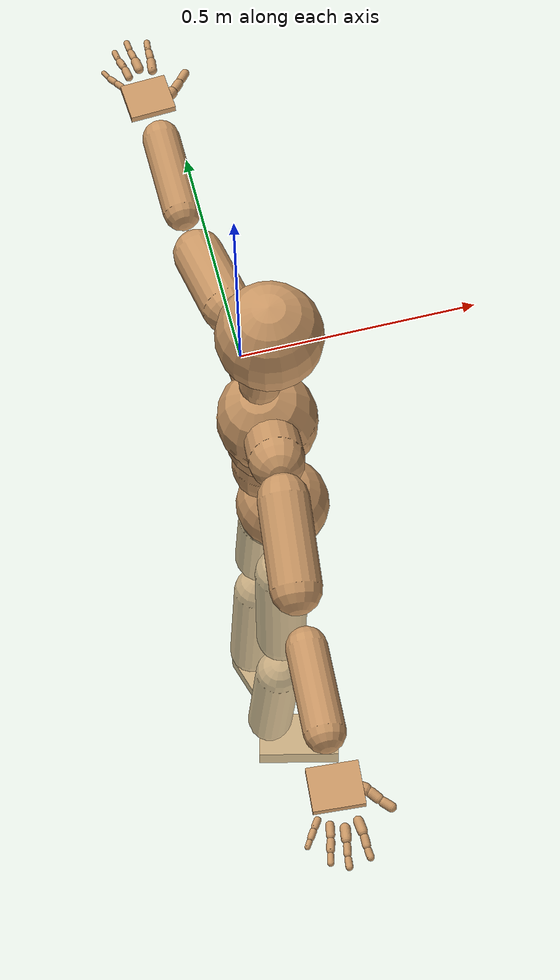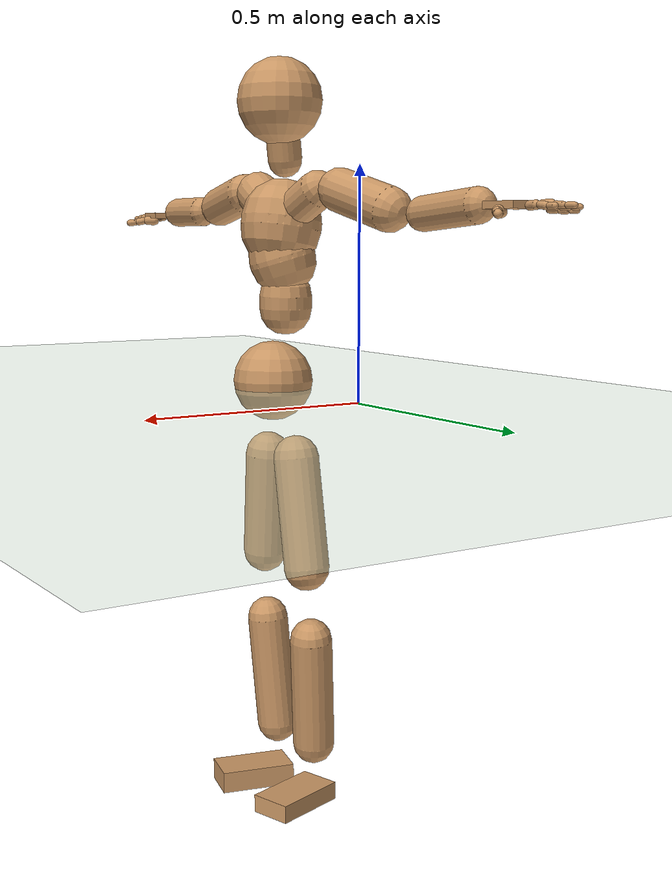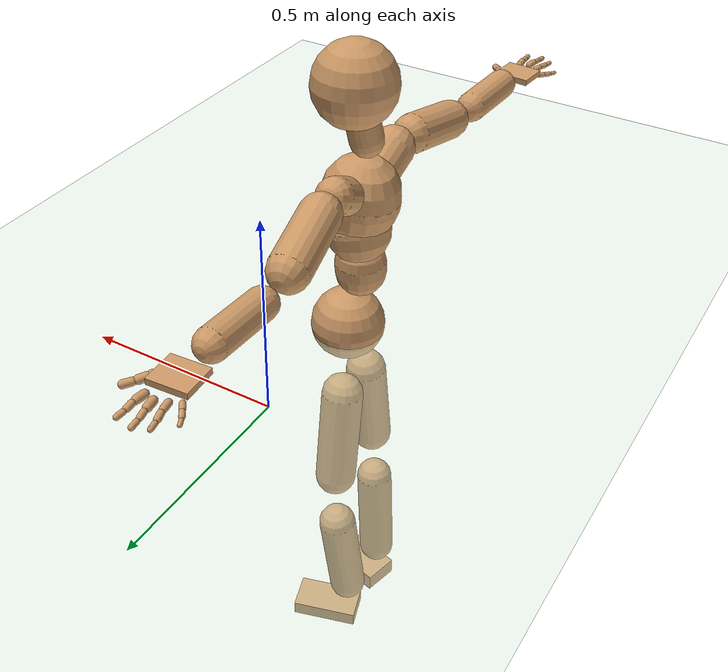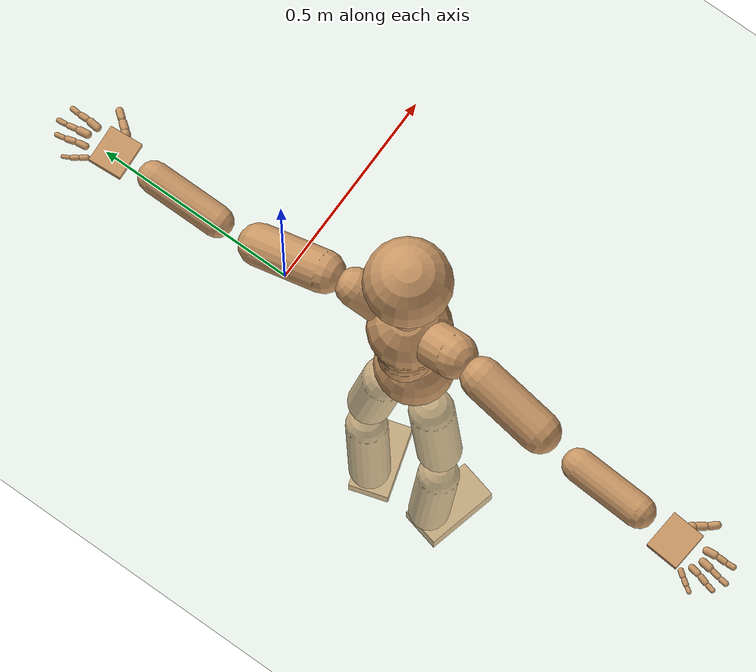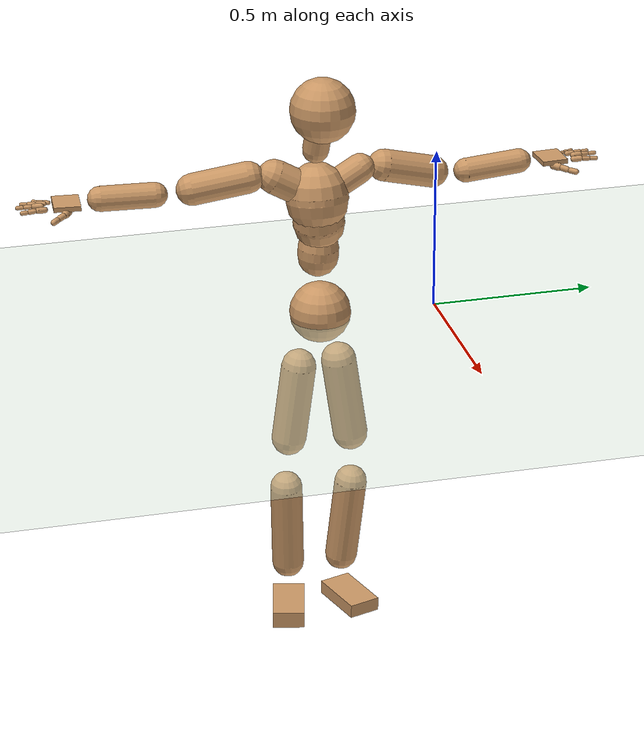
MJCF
<mujoco model="humanoid">
  <compiler coordinate="local" angle="radian"/>
  <default>
    <joint damping="0.0" armature="0.01" stiffness="0.0" limited="true"/>
    <geom conaffinity="1" condim="3" contype="7" margin="0.001" rgba="0.8 0.6 .4 1"/>
  </default>
  <asset>
    <texture type="skybox" builtin="gradient" rgb1=".4 .5 .6" rgb2="0 0 0" width="100" height="100"/>
    <texture builtin="flat" height="1278" mark="cross" markrgb="1 1 1" name="texgeom" random="0.01" rgb1="0.8 0.6 0.4" rgb2="0.8 0.6 0.4" type="cube" width="127"/>
    <texture builtin="checker" height="100" name="texplane" rgb1="0 0 0" rgb2="0.8 0.8 0.8" type="2d" width="100"/>
    <material name="MatPlane" reflectance="0.5" shininess="1" specular="1" texrepeat="60 60" texture="texplane"/>
    <material name="geom" texture="texgeom" texuniform="true"/>
  </asset>
  <worldbody>
    <light cutoff="100" diffuse="1 1 1" dir="-0 0 -1.3" directional="true" exponent="1" pos="0 0 1.3" specular=".1 .1 .1"/>
    <geom conaffinity="1" condim="3" name="floor" pos="0 0 0" rgba="0.8 0.9 0.8 1" size="100 100 .2" type="plane" material="MatPlane"/>
    <body name="Pelvis" pos="0.0008 -0.3584 0.0159">
      <freejoint name="Pelvis"/>
      <geom type="sphere" contype="1" conaffinity="1" density="500" size="0.0939" pos="0.0000 0.0000 0.0000" name="Pelvis"/>
      <body name="L_Hip" pos="-0.0229 0.0512 -0.0931">
        <joint name="L_Hip_x" type="hinge" pos="0 0 0" axis="1 0 0" stiffness="800" damping="80" armature="0.02" range="-180.0000 180.0000"/>
        <joint name="L_Hip_y" type="hinge" pos="0 0 0" axis="0 1 0" stiffness="800" damping="80" armature="0.02" range="-180.0000 180.0000"/>
        <joint name="L_Hip_z" type="hinge" pos="0 0 0" axis="0 0 1" stiffness="800" damping="80" armature="0.02" range="-180.0000 180.0000"/>
        <geom type="capsule" contype="1" conaffinity="1" density="500" fromto="-0.0017 0.0130 -0.0865 -0.0069 0.0519 -0.3461" size="0.0539" name="L_Hip"/>
        <body name="L_Knee" pos="-0.0086 0.0649 -0.4326">
          <joint name="L_Knee_x" type="hinge" pos="0 0 0" axis="1 0 0" stiffness="800" damping="80" armature="0.02" range="-180.0000 180.0000"/>
          <joint name="L_Knee_y" type="hinge" pos="0 0 0" axis="0 1 0" stiffness="800" damping="80" armature="0.02" range="-180.0000 180.0000"/>
          <joint name="L_Knee_z" type="hinge" pos="0 0 0" axis="0 0 1" stiffness="800" damping="80" armature="0.02" range="-180.0000 180.0000"/>
          <geom type="capsule" contype="1" conaffinity="1" density="500" fromto="-0.0077 -0.0082 -0.0902 -0.0307 -0.0327 -0.3609" size="0.0503" name="L_Knee"/>
          <body name="L_Ankle" pos="-0.0384 -0.0409 -0.4511">
            <joint name="L_Ankle_x" type="hinge" pos="0 0 0" axis="1 0 0" stiffness="800" damping="80" armature="0.02" range="-180.0000 180.0000"/>
            <joint name="L_Ankle_y" type="hinge" pos="0 0 0" axis="0 1 0" stiffness="800" damping="80" armature="0.02" range="-180.0000 180.0000"/>
            <joint name="L_Ankle_z" type="hinge" pos="0 0 0" axis="0 0 1" stiffness="800" damping="80" armature="0.02" range="-180.0000 180.0000"/>
            <geom type="box" contype="1" conaffinity="1" density="500" pos="0.0678 0.0208 -0.0328" size="0.0916 0.0499 0.0213" quat="0.9889 0.0000 0.0000 0.1483" name="L_Ankle"/>
            <body name="L_Toe" pos="0.1357 0.0416 -0.0655">
              <joint name="L_Toe_x" type="hinge" pos="0 0 0" axis="1 0 0" stiffness="500" damping="50" armature="0.02" range="-180.0000 180.0000"/>
              <joint name="L_Toe_y" type="hinge" pos="0 0 0" axis="0 1 0" stiffness="500" damping="50" armature="0.02" range="-180.0000 180.0000"/>
              <joint name="L_Toe_z" type="hinge" pos="0 0 0" axis="0 0 1" stiffness="500" damping="50" armature="0.02" range="-180.0000 180.0000"/>
              <geom type="box" contype="1" conaffinity="1" density="500" pos="0.0000 0.0000 0.0324" size="0.001 0.0024 0.0011" quat="0.9882 0.0000 0.0000 0.1529" name="L_Toe"/>
            </body>
          </body>
        </body>
      </body>
      <body name="R_Hip" pos="-0.0184 -0.0522 -0.1033">
        <joint name="R_Hip_x" type="hinge" pos="0 0 0" axis="1 0 0" stiffness="800" damping="80" armature="0.02" range="-180.0000 180.0000"/>
        <joint name="R_Hip_y" type="hinge" pos="0 0 0" axis="0 1 0" stiffness="800" damping="80" armature="0.02" range="-180.0000 180.0000"/>
        <joint name="R_Hip_z" type="hinge" pos="0 0 0" axis="0 0 1" stiffness="800" damping="80" armature="0.02" range="-180.0000 180.0000"/>
        <geom type="capsule" contype="1" conaffinity="1" density="500" fromto="-0.0029 -0.0100 -0.0829 -0.0117 -0.0401 -0.3316" size="0.0533" name="R_Hip"/>
        <body name="R_Knee" pos="-0.0147 -0.0501 -0.4144">
          <joint name="R_Knee_x" type="hinge" pos="0 0 0" axis="1 0 0" stiffness="800" damping="80" armature="0.02" range="-180.0000 180.0000"/>
          <joint name="R_Knee_y" type="hinge" pos="0 0 0" axis="0 1 0" stiffness="800" damping="80" armature="0.02" range="-180.0000 180.0000"/>
          <joint name="R_Knee_z" type="hinge" pos="0 0 0" axis="0 0 1" stiffness="800" damping="80" armature="0.02" range="-180.0000 180.0000"/>
          <geom type="capsule" contype="1" conaffinity="1" density="500" fromto="-0.0073 0.0031 -0.0933 -0.0291 0.0124 -0.3732" size="0.0497" name="R_Knee"/>
          <body name="R_Ankle" pos="-0.0364 0.0155 -0.4665">
            <joint name="R_Ankle_x" type="hinge" pos="0 0 0" axis="1 0 0" stiffness="800" damping="80" armature="0.02" range="-180.0000 180.0000"/>
            <joint name="R_Ankle_y" type="hinge" pos="0 0 0" axis="0 1 0" stiffness="800" damping="80" armature="0.02" range="-180.0000 180.0000"/>
            <joint name="R_Ankle_z" type="hinge" pos="0 0 0" axis="0 0 1" stiffness="800" damping="80" armature="0.02" range="-180.0000 180.0000"/>
            <geom type="box" contype="1" conaffinity="1" density="500" pos="0.0710 -0.0170 -0.0322" size="0.0916 0.0499 0.0259" quat="0.9931 0.0000 0.0000 -0.1173" name="R_Ankle"/>
            <body name="R_Toe" pos="0.1421 -0.034 -0.0643">
              <joint name="R_Toe_x" type="hinge" pos="0 0 0" axis="1 0 0" stiffness="500" damping="50" armature="0.02" range="-180.0000 180.0000"/>
              <joint name="R_Toe_y" type="hinge" pos="0 0 0" axis="0 1 0" stiffness="500" damping="50" armature="0.02" range="-180.0000 180.0000"/>
              <joint name="R_Toe_z" type="hinge" pos="0 0 0" axis="0 0 1" stiffness="500" damping="50" armature="0.02" range="-180.0000 180.0000"/>
              <geom type="box" contype="1" conaffinity="1" density="500" pos="0.0000 0.0000 0.0272" size="0.0009 0.0024 0.0011" quat="0.9940 0.0000 0.0000 -0.1092" name="R_Toe"/>
            </body>
          </body>
        </body>
      </body>
      <body name="Torso" pos="-0.0352 -0.001 0.1109">
        <joint name="Torso_x" type="hinge" pos="0 0 0" axis="1 0 0" stiffness="1000" damping="100" armature="0.02" range="-180.0000 180.0000"/>
        <joint name="Torso_y" type="hinge" pos="0 0 0" axis="0 1 0" stiffness="1000" damping="100" armature="0.02" range="-180.0000 180.0000"/>
        <joint name="Torso_z" type="hinge" pos="0 0 0" axis="0 0 1" stiffness="1000" damping="100" armature="0.02" range="-180.0000 180.0000"/>
        <geom type="capsule" contype="1" conaffinity="1" density="500" fromto="0.0017 0.0045 0.0881 0.0011 0.0030 0.0588" size="0.0625" name="Torso"/>
        <body name="Spine" pos="0.0028 0.0076 0.1469">
          <joint name="Spine_x" type="hinge" pos="0 0 0" axis="1 0 0" stiffness="1000" damping="100" armature="0.02" range="-180.0000 180.0000"/>
          <joint name="Spine_y" type="hinge" pos="0 0 0" axis="0 1 0" stiffness="1000" damping="100" armature="0.02" range="-180.0000 180.0000"/>
          <joint name="Spine_z" type="hinge" pos="0 0 0" axis="0 0 1" stiffness="1000" damping="100" armature="0.02" range="-180.0000 180.0000"/>
          <geom type="capsule" contype="1" conaffinity="1" density="500" fromto="0.0087 -0.0048 0.0330 0.0058 -0.0032 0.0220" size="0.0787" name="Spine"/>
          <body name="Chest" pos="0.0145 -0.0079 0.0551">
            <joint name="Chest_x" type="hinge" pos="0 0 0" axis="1 0 0" stiffness="1000" damping="100" armature="0.02" range="-180.0000 180.0000"/>
            <joint name="Chest_y" type="hinge" pos="0 0 0" axis="0 1 0" stiffness="1000" damping="100" armature="0.02" range="-180.0000 180.0000"/>
            <joint name="Chest_z" type="hinge" pos="0 0 0" axis="0 0 1" stiffness="1000" damping="100" armature="0.02" range="-180.0000 180.0000"/>
            <geom type="capsule" contype="1" conaffinity="1" density="500" fromto="-0.0092 -0.0014 0.0635 -0.0061 -0.0009 0.0423" size="0.0949" name="Chest"/>
            <body name="Neck" pos="-0.0251 -0.0066 0.1663">
              <joint name="Neck_x" type="hinge" pos="0 0 0" axis="1 0 0" stiffness="500" damping="50" armature="0.02" range="-180.0000 180.0000"/>
              <joint name="Neck_y" type="hinge" pos="0 0 0" axis="0 1 0" stiffness="500" damping="50" armature="0.02" range="-180.0000 180.0000"/>
              <joint name="Neck_z" type="hinge" pos="0 0 0" axis="0 0 1" stiffness="500" damping="50" armature="0.02" range="-180.0000 180.0000"/>
              <geom type="capsule" contype="1" conaffinity="1" density="500" fromto="0.0059 0.0039 0.0328 0.0235 0.0155 0.1313" size="0.0399" name="Neck"/>
              <body name="Head" pos="0.0293 0.0194 0.1642">
                <joint name="Head_x" type="hinge" pos="0 0 0" axis="1 0 0" stiffness="500" damping="50" armature="0.02" range="-180.0000 180.0000"/>
                <joint name="Head_y" type="hinge" pos="0 0 0" axis="0 1 0" stiffness="500" damping="50" armature="0.02" range="-180.0000 180.0000"/>
                <joint name="Head_z" type="hinge" pos="0 0 0" axis="0 0 1" stiffness="500" damping="50" armature="0.02" range="-180.0000 180.0000"/>
                <geom type="sphere" contype="1" conaffinity="1" density="500" size="0.0988" pos="0.0000 0.0000 0.0000" name="Head"/>
              </body>
            </body>
            <body name="L_Thorax" pos="-0.0084 0.038 0.0754">
              <joint name="L_Thorax_x" type="hinge" pos="0 0 0" axis="1 0 0" stiffness="500" damping="50" armature="0.02" range="-180.0000 180.0000"/>
              <joint name="L_Thorax_y" type="hinge" pos="0 0 0" axis="0 1 0" stiffness="500" damping="50" armature="0.02" range="-180.0000 180.0000"/>
              <joint name="L_Thorax_z" type="hinge" pos="0 0 0" axis="0 0 1" stiffness="500" damping="50" armature="0.02" range="-180.0000 180.0000"/>
              <geom type="capsule" contype="1" conaffinity="1" density="500" fromto="-0.0032 0.0241 0.0127 -0.0127 0.0964 0.0510" size="0.0445" name="L_Thorax"/>
              <body name="L_Shoulder" pos="-0.0159 0.1205 0.0637">
                <joint name="L_Shoulder_x" type="hinge" pos="0 0 0" axis="1 0 0" stiffness="500" damping="50" armature="0.02" range="-180.0000 180.0000"/>
                <joint name="L_Shoulder_y" type="hinge" pos="0 0 0" axis="0 1 0" stiffness="500" damping="50" armature="0.02" range="-180.0000 180.0000"/>
                <joint name="L_Shoulder_z" type="hinge" pos="0 0 0" axis="0 0 1" stiffness="500" damping="50" armature="0.02" range="-180.0000 180.0000"/>
                <geom type="capsule" contype="1" conaffinity="1" density="500" fromto="-0.0073 0.0522 -0.0149 -0.0292 0.2088 -0.0594" size="0.0491" name="L_Shoulder"/>
                <body name="L_Elbow" pos="-0.0365 0.261 -0.0743">
                  <joint name="L_Elbow_x" type="hinge" pos="0 0 0" axis="1 0 0" stiffness="500" damping="50" armature="0.02" range="-720.0000 720.0000"/>
                  <joint name="L_Elbow_y" type="hinge" pos="0 0 0" axis="0 1 0" stiffness="500" damping="50" armature="0.02" range="-720.0000 720.0000"/>
                  <joint name="L_Elbow_z" type="hinge" pos="0 0 0" axis="0 0 1" stiffness="500" damping="50" armature="0.02" range="-720.0000 720.0000"/>
                  <geom type="capsule" contype="1" conaffinity="1" density="500" fromto="-0.0010 0.0563 0.0044 -0.0039 0.2251 0.0176" size="0.037" name="L_Elbow"/>
                  <body name="L_Wrist" pos="-0.0049 0.2813 0.022">
                    <joint name="L_Wrist_x" type="hinge" pos="0 0 0" axis="1 0 0" stiffness="300" damping="30" armature="0.02" range="-180.0000 180.0000"/>
                    <joint name="L_Wrist_y" type="hinge" pos="0 0 0" axis="0 1 0" stiffness="300" damping="30" armature="0.02" range="-180.0000 180.0000"/>
                    <joint name="L_Wrist_z" type="hinge" pos="0 0 0" axis="0 0 1" stiffness="300" damping="30" armature="0.02" range="-180.0000 180.0000"/>
                    <geom type="box" contype="1" conaffinity="1" density="500" pos="-0.0031 0.0454 -0.0058" size="0.0403 0.0452 0.0072" quat="0.7305 0.0000 0.0000 -0.6829" name="L_Wrist"/>
                    <body name="L_Index1" pos="0.0196 0.1061 -0.0087">
                      <joint name="L_Index1_x" type="hinge" pos="0 0 0" axis="1 0 0" stiffness="100" damping="10" armature="0.02" range="-180.0000 180.0000"/>
                      <joint name="L_Index1_y" type="hinge" pos="0 0 0" axis="0 1 0" stiffness="100" damping="10" armature="0.02" range="-180.0000 180.0000"/>
                      <joint name="L_Index1_z" type="hinge" pos="0 0 0" axis="0 0 1" stiffness="100" damping="10" armature="0.02" range="-180.0000 180.0000"/>
                      <geom type="capsule" contype="1" conaffinity="1" density="500" fromto="0.0007 0.0066 0.0003 0.0028 0.0265 0.0010" size="0.0091" name="L_Index1"/>
                      <body name="L_Index2" pos="0.0035 0.0331 0.0013">
                        <joint name="L_Index2_x" type="hinge" pos="0 0 0" axis="1 0 0" stiffness="100" damping="10" armature="0.02" range="-180.0000 180.0000"/>
                        <joint name="L_Index2_y" type="hinge" pos="0 0 0" axis="0 1 0" stiffness="100" damping="10" armature="0.02" range="-180.0000 180.0000"/>
                        <joint name="L_Index2_z" type="hinge" pos="0 0 0" axis="0 0 1" stiffness="100" damping="10" armature="0.02" range="-180.0000 180.0000"/>
                        <geom type="capsule" contype="1" conaffinity="1" density="500" fromto="-0.0000 0.0047 -0.0005 -0.0001 0.0187 -0.0021" size="0.0075" name="L_Index2"/>
                        <body name="L_Index3" pos="-0.0002 0.0234 -0.0026">
                          <joint name="L_Index3_x" type="hinge" pos="0 0 0" axis="1 0 0" stiffness="100" damping="10" armature="0.02" range="-180.0000 180.0000"/>
                          <joint name="L_Index3_y" type="hinge" pos="0 0 0" axis="0 1 0" stiffness="100" damping="10" armature="0.02" range="-180.0000 180.0000"/>
                          <joint name="L_Index3_z" type="hinge" pos="0 0 0" axis="0 0 1" stiffness="100" damping="10" armature="0.02" range="-180.0000 180.0000"/>
                          <geom type="capsule" contype="1" conaffinity="1" density="500" fromto="0.0004 0.0051 -0.0001 0.0015 0.0203 -0.0005" size="0.0064" name="L_Index3"/>
                        </body>
                      </body>
                    </body>
                    <body name="L_Middle1" pos="-0.0042 0.1141 -0.0064">
                      <joint name="L_Middle1_x" type="hinge" pos="0 0 0" axis="1 0 0" stiffness="100" damping="10" armature="0.02" range="-180.0000 180.0000"/>
                      <joint name="L_Middle1_y" type="hinge" pos="0 0 0" axis="0 1 0" stiffness="100" damping="10" armature="0.02" range="-180.0000 180.0000"/>
                      <joint name="L_Middle1_z" type="hinge" pos="0 0 0" axis="0 0 1" stiffness="100" damping="10" armature="0.02" range="-180.0000 180.0000"/>
                      <geom type="capsule" contype="1" conaffinity="1" density="500" fromto="-0.0009 0.0063 0.0000 -0.0036 0.0253 0.0001" size="0.0093" name="L_Middle1"/>
                      <body name="L_Middle2" pos="-0.0044 0.0316 0.0001">
                        <joint name="L_Middle2_x" type="hinge" pos="0 0 0" axis="1 0 0" stiffness="100" damping="10" armature="0.02" range="-180.0000 180.0000"/>
                        <joint name="L_Middle2_y" type="hinge" pos="0 0 0" axis="0 1 0" stiffness="100" damping="10" armature="0.02" range="-180.0000 180.0000"/>
                        <joint name="L_Middle2_z" type="hinge" pos="0 0 0" axis="0 0 1" stiffness="100" damping="10" armature="0.02" range="-180.0000 180.0000"/>
                        <geom type="capsule" contype="1" conaffinity="1" density="500" fromto="-0.0009 0.0049 -0.0005 -0.0036 0.0194 -0.0020" size="0.0069" name="L_Middle2"/>
                        <body name="L_Middle3" pos="-0.0044 0.0243 -0.0025">
                          <joint name="L_Middle3_x" type="hinge" pos="0 0 0" axis="1 0 0" stiffness="100" damping="10" armature="0.02" range="-180.0000 180.0000"/>
                          <joint name="L_Middle3_y" type="hinge" pos="0 0 0" axis="0 1 0" stiffness="100" damping="10" armature="0.02" range="-180.0000 180.0000"/>
                          <joint name="L_Middle3_z" type="hinge" pos="0 0 0" axis="0 0 1" stiffness="100" damping="10" armature="0.02" range="-180.0000 180.0000"/>
                          <geom type="capsule" contype="1" conaffinity="1" density="500" fromto="-0.0005 0.0053 -0.0001 -0.0020 0.0210 -0.0004" size="0.0062" name="L_Middle3"/>
                        </body>
                      </body>
                    </body>
                    <body name="L_Pinky1" pos="-0.0442 0.0887 -0.0147">
                      <joint name="L_Pinky1_x" type="hinge" pos="0 0 0" axis="1 0 0" stiffness="100" damping="10" armature="0.02" range="-180.0000 180.0000"/>
                      <joint name="L_Pinky1_y" type="hinge" pos="0 0 0" axis="0 1 0" stiffness="100" damping="10" armature="0.02" range="-180.0000 180.0000"/>
                      <joint name="L_Pinky1_z" type="hinge" pos="0 0 0" axis="0 0 1" stiffness="100" damping="10" armature="0.02" range="-180.0000 180.0000"/>
                      <geom type="capsule" contype="1" conaffinity="1" density="500" fromto="-0.0024 0.0033 -0.0003 -0.0095 0.0133 -0.0012" size="0.0066" name="L_Pinky1"/>
                      <body name="L_Pinky2" pos="-0.0119 0.0167 -0.0015">
                        <joint name="L_Pinky2_x" type="hinge" pos="0 0 0" axis="1 0 0" stiffness="100" damping="10" armature="0.02" range="-180.0000 180.0000"/>
                        <joint name="L_Pinky2_y" type="hinge" pos="0 0 0" axis="0 1 0" stiffness="100" damping="10" armature="0.02" range="-180.0000 180.0000"/>
                        <joint name="L_Pinky2_z" type="hinge" pos="0 0 0" axis="0 0 1" stiffness="100" damping="10" armature="0.02" range="-180.0000 180.0000"/>
                        <geom type="capsule" contype="1" conaffinity="1" density="500" fromto="-0.0022 0.0033 -0.0003 -0.0089 0.0131 -0.0014" size="0.0063" name="L_Pinky2"/>
                        <body name="L_Pinky3" pos="-0.0111 0.0164 -0.0017">
                          <joint name="L_Pinky3_x" type="hinge" pos="0 0 0" axis="1 0 0" stiffness="100" damping="10" armature="0.02" range="-180.0000 180.0000"/>
                          <joint name="L_Pinky3_y" type="hinge" pos="0 0 0" axis="0 1 0" stiffness="100" damping="10" armature="0.02" range="-180.0000 180.0000"/>
                          <joint name="L_Pinky3_z" type="hinge" pos="0 0 0" axis="0 0 1" stiffness="100" damping="10" armature="0.02" range="-180.0000 180.0000"/>
                          <geom type="capsule" contype="1" conaffinity="1" density="500" fromto="-0.0018 0.0037 0.0001 -0.0073 0.0147 0.0002" size="0.0048" name="L_Pinky3"/>
                        </body>
                      </body>
                    </body>
                    <body name="L_Ring1" pos="-0.0277 0.1021 -0.0094">
                      <joint name="L_Ring1_x" type="hinge" pos="0 0 0" axis="1 0 0" stiffness="100" damping="10" armature="0.02" range="-180.0000 180.0000"/>
                      <joint name="L_Ring1_y" type="hinge" pos="0 0 0" axis="0 1 0" stiffness="100" damping="10" armature="0.02" range="-180.0000 180.0000"/>
                      <joint name="L_Ring1_z" type="hinge" pos="0 0 0" axis="0 0 1" stiffness="100" damping="10" armature="0.02" range="-180.0000 180.0000"/>
                      <geom type="capsule" contype="1" conaffinity="1" density="500" fromto="-0.0010 0.0058 0.0001 -0.0041 0.0234 0.0003" size="0.0078" name="L_Ring1"/>
                      <body name="L_Ring2" pos="-0.0051 0.0292 0.0004">
                        <joint name="L_Ring2_x" type="hinge" pos="0 0 0" axis="1 0 0" stiffness="100" damping="10" armature="0.02" range="-180.0000 180.0000"/>
                        <joint name="L_Ring2_y" type="hinge" pos="0 0 0" axis="0 1 0" stiffness="100" damping="10" armature="0.02" range="-180.0000 180.0000"/>
                        <joint name="L_Ring2_z" type="hinge" pos="0 0 0" axis="0 0 1" stiffness="100" damping="10" armature="0.02" range="-180.0000 180.0000"/>
                        <geom type="capsule" contype="1" conaffinity="1" density="500" fromto="-0.0014 0.0048 -0.0005 -0.0055 0.0190 -0.0018" size="0.0074" name="L_Ring2"/>
                        <body name="L_Ring3" pos="-0.0068 0.0238 -0.0023">
                          <joint name="L_Ring3_x" type="hinge" pos="0 0 0" axis="1 0 0" stiffness="100" damping="10" armature="0.02" range="-180.0000 180.0000"/>
                          <joint name="L_Ring3_y" type="hinge" pos="0 0 0" axis="0 1 0" stiffness="100" damping="10" armature="0.02" range="-180.0000 180.0000"/>
                          <joint name="L_Ring3_z" type="hinge" pos="0 0 0" axis="0 0 1" stiffness="100" damping="10" armature="0.02" range="-180.0000 180.0000"/>
                          <geom type="capsule" contype="1" conaffinity="1" density="500" fromto="-0.0010 0.0052 -0.0001 -0.0039 0.0206 -0.0002" size="0.0058" name="L_Ring3"/>
                        </body>
                      </body>
                    </body>
                    <body name="L_Thumb1" pos="0.0258 0.0428 -0.0188">
                      <joint name="L_Thumb1_x" type="hinge" pos="0 0 0" axis="1 0 0" stiffness="100" damping="10" armature="0.02" range="-180.0000 180.0000"/>
                      <joint name="L_Thumb1_y" type="hinge" pos="0 0 0" axis="0 1 0" stiffness="100" damping="10" armature="0.02" range="-180.0000 180.0000"/>
                      <joint name="L_Thumb1_z" type="hinge" pos="0 0 0" axis="0 0 1" stiffness="100" damping="10" armature="0.02" range="-180.0000 180.0000"/>
                      <geom type="capsule" contype="1" conaffinity="1" density="500" fromto="0.0052 0.0035 0.0002 0.0210 0.0139 0.0009" size="0.012" name="L_Thumb1"/>
                      <body name="L_Thumb2" pos="0.0262 0.0174 0.0011">
                        <joint name="L_Thumb2_x" type="hinge" pos="0 0 0" axis="1 0 0" stiffness="100" damping="10" armature="0.02" range="-180.0000 180.0000"/>
                        <joint name="L_Thumb2_y" type="hinge" pos="0 0 0" axis="0 1 0" stiffness="100" damping="10" armature="0.02" range="-180.0000 180.0000"/>
                        <joint name="L_Thumb2_z" type="hinge" pos="0 0 0" axis="0 0 1" stiffness="100" damping="10" armature="0.02" range="-180.0000 180.0000"/>
                        <geom type="capsule" contype="1" conaffinity="1" density="500" fromto="0.0033 0.0043 -0.0009 0.0134 0.0171 -0.0035" size="0.0095" name="L_Thumb2"/>
                        <body name="L_Thumb3" pos="0.0167 0.0213 -0.0044">
                          <joint name="L_Thumb3_x" type="hinge" pos="0 0 0" axis="1 0 0" stiffness="100" damping="10" armature="0.02" range="-180.0000 180.0000"/>
                          <joint name="L_Thumb3_y" type="hinge" pos="0 0 0" axis="0 1 0" stiffness="100" damping="10" armature="0.02" range="-180.0000 180.0000"/>
                          <joint name="L_Thumb3_z" type="hinge" pos="0 0 0" axis="0 0 1" stiffness="100" damping="10" armature="0.02" range="-180.0000 180.0000"/>
                          <geom type="capsule" contype="1" conaffinity="1" density="500" fromto="0.0037 0.0047 -0.0005 0.0150 0.0187 -0.0019" size="0.0087" name="L_Thumb3"/>
                        </body>
                      </body>
                    </body>
                  </body>
                </body>
              </body>
            </body>
            <body name="R_Thorax" pos="-0.0124 -0.0384 0.0759">
              <joint name="R_Thorax_x" type="hinge" pos="0 0 0" axis="1 0 0" stiffness="500" damping="50" armature="0.02" range="-180.0000 180.0000"/>
              <joint name="R_Thorax_y" type="hinge" pos="0 0 0" axis="0 1 0" stiffness="500" damping="50" armature="0.02" range="-180.0000 180.0000"/>
              <joint name="R_Thorax_z" type="hinge" pos="0 0 0" axis="0 0 1" stiffness="500" damping="50" armature="0.02" range="-180.0000 180.0000"/>
              <geom type="capsule" contype="1" conaffinity="1" density="500" fromto="-0.0018 -0.0225 0.0124 -0.0073 -0.0899 0.0497" size="0.0524" name="R_Thorax"/>
              <body name="R_Shoulder" pos="-0.0091 -0.1124 0.0621">
                <joint name="R_Shoulder_x" type="hinge" pos="0 0 0" axis="1 0 0" stiffness="500" damping="50" armature="0.02" range="-180.0000 180.0000"/>
                <joint name="R_Shoulder_y" type="hinge" pos="0 0 0" axis="0 1 0" stiffness="500" damping="50" armature="0.02" range="-180.0000 180.0000"/>
                <joint name="R_Shoulder_z" type="hinge" pos="0 0 0" axis="0 0 1" stiffness="500" damping="50" armature="0.02" range="-180.0000 180.0000"/>
                <geom type="capsule" contype="1" conaffinity="1" density="500" fromto="-0.0058 -0.0555 -0.0097 -0.0234 -0.2220 -0.0389" size="0.0481" name="R_Shoulder"/>
                <body name="R_Elbow" pos="-0.0292 -0.2775 -0.0486">
                  <joint name="R_Elbow_x" type="hinge" pos="0 0 0" axis="1 0 0" stiffness="500" damping="50" armature="0.02" range="-720.0000 720.0000"/>
                  <joint name="R_Elbow_y" type="hinge" pos="0 0 0" axis="0 1 0" stiffness="500" damping="50" armature="0.02" range="-720.0000 720.0000"/>
                  <joint name="R_Elbow_z" type="hinge" pos="0 0 0" axis="0 0 1" stiffness="500" damping="50" armature="0.02" range="-720.0000 720.0000"/>
                  <geom type="capsule" contype="1" conaffinity="1" density="500" fromto="-0.0028 -0.0544 0.0002 -0.0112 -0.2175 0.0008" size="0.038" name="R_Elbow"/>
                  <body name="R_Wrist" pos="-0.014 -0.2719 0.001">
                    <joint name="R_Wrist_x" type="hinge" pos="0 0 0" axis="1 0 0" stiffness="300" damping="30" armature="0.02" range="-180.0000 180.0000"/>
                    <joint name="R_Wrist_y" type="hinge" pos="0 0 0" axis="0 1 0" stiffness="300" damping="30" armature="0.02" range="-180.0000 180.0000"/>
                    <joint name="R_Wrist_z" type="hinge" pos="0 0 0" axis="0 0 1" stiffness="300" damping="30" armature="0.02" range="-180.0000 180.0000"/>
                    <geom type="box" contype="1" conaffinity="1" density="500" pos="-0.0035 -0.0452 -0.0075" size="0.0403 0.0465 0.0074" quat="0.7340 0.0000 0.0000 0.6792" name="R_Wrist"/>
                    <body name="R_Index1" pos="0.0187 -0.1057 -0.012">
                      <joint name="R_Index1_x" type="hinge" pos="0 0 0" axis="1 0 0" stiffness="100" damping="10" armature="0.02" range="-180.0000 180.0000"/>
                      <joint name="R_Index1_y" type="hinge" pos="0 0 0" axis="0 1 0" stiffness="100" damping="10" armature="0.02" range="-180.0000 180.0000"/>
                      <joint name="R_Index1_z" type="hinge" pos="0 0 0" axis="0 0 1" stiffness="100" damping="10" armature="0.02" range="-180.0000 180.0000"/>
                      <geom type="capsule" contype="1" conaffinity="1" density="500" fromto="0.0007 -0.0066 0.0003 0.0028 -0.0265 0.0010" size="0.0091" name="R_Index1"/>
                      <body name="R_Index2" pos="0.0035 -0.0331 0.0013">
                        <joint name="R_Index2_x" type="hinge" pos="0 0 0" axis="1 0 0" stiffness="100" damping="10" armature="0.02" range="-180.0000 180.0000"/>
                        <joint name="R_Index2_y" type="hinge" pos="0 0 0" axis="0 1 0" stiffness="100" damping="10" armature="0.02" range="-180.0000 180.0000"/>
                        <joint name="R_Index2_z" type="hinge" pos="0 0 0" axis="0 0 1" stiffness="100" damping="10" armature="0.02" range="-180.0000 180.0000"/>
                        <geom type="capsule" contype="1" conaffinity="1" density="500" fromto="-0.0000 -0.0047 -0.0005 -0.0001 -0.0187 -0.0021" size="0.0075" name="R_Index2"/>
                        <body name="R_Index3" pos="-0.0002 -0.0234 -0.0026">
                          <joint name="R_Index3_x" type="hinge" pos="0 0 0" axis="1 0 0" stiffness="100" damping="10" armature="0.02" range="-180.0000 180.0000"/>
                          <joint name="R_Index3_y" type="hinge" pos="0 0 0" axis="0 1 0" stiffness="100" damping="10" armature="0.02" range="-180.0000 180.0000"/>
                          <joint name="R_Index3_z" type="hinge" pos="0 0 0" axis="0 0 1" stiffness="100" damping="10" armature="0.02" range="-180.0000 180.0000"/>
                          <geom type="capsule" contype="1" conaffinity="1" density="500" fromto="0.0004 -0.0043 -0.0001 0.0015 -0.0171 -0.0005" size="0.0067" name="R_Index3"/>
                        </body>
                      </body>
                    </body>
                    <body name="R_Middle1" pos="-0.0051 -0.1137 -0.0098">
                      <joint name="R_Middle1_x" type="hinge" pos="0 0 0" axis="1 0 0" stiffness="100" damping="10" armature="0.02" range="-180.0000 180.0000"/>
                      <joint name="R_Middle1_y" type="hinge" pos="0 0 0" axis="0 1 0" stiffness="100" damping="10" armature="0.02" range="-180.0000 180.0000"/>
                      <joint name="R_Middle1_z" type="hinge" pos="0 0 0" axis="0 0 1" stiffness="100" damping="10" armature="0.02" range="-180.0000 180.0000"/>
                      <geom type="capsule" contype="1" conaffinity="1" density="500" fromto="-0.0009 -0.0063 0.0000 -0.0036 -0.0253 0.0001" size="0.0093" name="R_Middle1"/>
                      <body name="R_Middle2" pos="-0.0044 -0.0316 0.0001">
                        <joint name="R_Middle2_x" type="hinge" pos="0 0 0" axis="1 0 0" stiffness="100" damping="10" armature="0.02" range="-180.0000 180.0000"/>
                        <joint name="R_Middle2_y" type="hinge" pos="0 0 0" axis="0 1 0" stiffness="100" damping="10" armature="0.02" range="-180.0000 180.0000"/>
                        <joint name="R_Middle2_z" type="hinge" pos="0 0 0" axis="0 0 1" stiffness="100" damping="10" armature="0.02" range="-180.0000 180.0000"/>
                        <geom type="capsule" contype="1" conaffinity="1" density="500" fromto="-0.0009 -0.0049 -0.0005 -0.0036 -0.0194 -0.0020" size="0.0069" name="R_Middle2"/>
                        <body name="R_Middle3" pos="-0.0044 -0.0243 -0.0025">
                          <joint name="R_Middle3_x" type="hinge" pos="0 0 0" axis="1 0 0" stiffness="100" damping="10" armature="0.02" range="-180.0000 180.0000"/>
                          <joint name="R_Middle3_y" type="hinge" pos="0 0 0" axis="0 1 0" stiffness="100" damping="10" armature="0.02" range="-180.0000 180.0000"/>
                          <joint name="R_Middle3_z" type="hinge" pos="0 0 0" axis="0 0 1" stiffness="100" damping="10" armature="0.02" range="-180.0000 180.0000"/>
                          <geom type="capsule" contype="1" conaffinity="1" density="500" fromto="-0.0005 -0.0045 -0.0001 -0.0020 -0.0178 -0.0004" size="0.0065" name="R_Middle3"/>
                        </body>
                      </body>
                    </body>
                    <body name="R_Pinky1" pos="-0.0451 -0.0884 -0.018">
                      <joint name="R_Pinky1_x" type="hinge" pos="0 0 0" axis="1 0 0" stiffness="100" damping="10" armature="0.02" range="-180.0000 180.0000"/>
                      <joint name="R_Pinky1_y" type="hinge" pos="0 0 0" axis="0 1 0" stiffness="100" damping="10" armature="0.02" range="-180.0000 180.0000"/>
                      <joint name="R_Pinky1_z" type="hinge" pos="0 0 0" axis="0 0 1" stiffness="100" damping="10" armature="0.02" range="-180.0000 180.0000"/>
                      <geom type="capsule" contype="1" conaffinity="1" density="500" fromto="-0.0024 -0.0033 -0.0003 -0.0095 -0.0133 -0.0012" size="0.0066" name="R_Pinky1"/>
                      <body name="R_Pinky2" pos="-0.0118 -0.0167 -0.0015">
                        <joint name="R_Pinky2_x" type="hinge" pos="0 0 0" axis="1 0 0" stiffness="100" damping="10" armature="0.02" range="-180.0000 180.0000"/>
                        <joint name="R_Pinky2_y" type="hinge" pos="0 0 0" axis="0 1 0" stiffness="100" damping="10" armature="0.02" range="-180.0000 180.0000"/>
                        <joint name="R_Pinky2_z" type="hinge" pos="0 0 0" axis="0 0 1" stiffness="100" damping="10" armature="0.02" range="-180.0000 180.0000"/>
                        <geom type="capsule" contype="1" conaffinity="1" density="500" fromto="-0.0022 -0.0033 -0.0003 -0.0089 -0.0131 -0.0014" size="0.0063" name="R_Pinky2"/>
                        <body name="R_Pinky3" pos="-0.0111 -0.0164 -0.0017">
                          <joint name="R_Pinky3_x" type="hinge" pos="0 0 0" axis="1 0 0" stiffness="100" damping="10" armature="0.02" range="-180.0000 180.0000"/>
                          <joint name="R_Pinky3_y" type="hinge" pos="0 0 0" axis="0 1 0" stiffness="100" damping="10" armature="0.02" range="-180.0000 180.0000"/>
                          <joint name="R_Pinky3_z" type="hinge" pos="0 0 0" axis="0 0 1" stiffness="100" damping="10" armature="0.02" range="-180.0000 180.0000"/>
                          <geom type="capsule" contype="1" conaffinity="1" density="500" fromto="-0.0018 -0.0029 0.0001 -0.0073 -0.0115 0.0002" size="0.0051" name="R_Pinky3"/>
                        </body>
                      </body>
                    </body>
                    <body name="R_Ring1" pos="-0.0286 -0.1017 -0.0128">
                      <joint name="R_Ring1_x" type="hinge" pos="0 0 0" axis="1 0 0" stiffness="100" damping="10" armature="0.02" range="-180.0000 180.0000"/>
                      <joint name="R_Ring1_y" type="hinge" pos="0 0 0" axis="0 1 0" stiffness="100" damping="10" armature="0.02" range="-180.0000 180.0000"/>
                      <joint name="R_Ring1_z" type="hinge" pos="0 0 0" axis="0 0 1" stiffness="100" damping="10" armature="0.02" range="-180.0000 180.0000"/>
                      <geom type="capsule" contype="1" conaffinity="1" density="500" fromto="-0.0010 -0.0058 0.0001 -0.0041 -0.0234 0.0003" size="0.0078" name="R_Ring1"/>
                      <body name="R_Ring2" pos="-0.0051 -0.0292 0.0004">
                        <joint name="R_Ring2_x" type="hinge" pos="0 0 0" axis="1 0 0" stiffness="100" damping="10" armature="0.02" range="-180.0000 180.0000"/>
                        <joint name="R_Ring2_y" type="hinge" pos="0 0 0" axis="0 1 0" stiffness="100" damping="10" armature="0.02" range="-180.0000 180.0000"/>
                        <joint name="R_Ring2_z" type="hinge" pos="0 0 0" axis="0 0 1" stiffness="100" damping="10" armature="0.02" range="-180.0000 180.0000"/>
                        <geom type="capsule" contype="1" conaffinity="1" density="500" fromto="-0.0014 -0.0048 -0.0005 -0.0055 -0.0190 -0.0018" size="0.0074" name="R_Ring2"/>
                        <body name="R_Ring3" pos="-0.0068 -0.0238 -0.0023">
                          <joint name="R_Ring3_x" type="hinge" pos="0 0 0" axis="1 0 0" stiffness="100" damping="10" armature="0.02" range="-180.0000 180.0000"/>
                          <joint name="R_Ring3_y" type="hinge" pos="0 0 0" axis="0 1 0" stiffness="100" damping="10" armature="0.02" range="-180.0000 180.0000"/>
                          <joint name="R_Ring3_z" type="hinge" pos="0 0 0" axis="0 0 1" stiffness="100" damping="10" armature="0.02" range="-180.0000 180.0000"/>
                          <geom type="capsule" contype="1" conaffinity="1" density="500" fromto="-0.0010 -0.0044 -0.0001 -0.0039 -0.0174 -0.0002" size="0.0061" name="R_Ring3"/>
                        </body>
                      </body>
                    </body>
                    <body name="R_Thumb1" pos="0.025 -0.0424 -0.0222">
                      <joint name="R_Thumb1_x" type="hinge" pos="0 0 0" axis="1 0 0" stiffness="100" damping="10" armature="0.02" range="-180.0000 180.0000"/>
                      <joint name="R_Thumb1_y" type="hinge" pos="0 0 0" axis="0 1 0" stiffness="100" damping="10" armature="0.02" range="-180.0000 180.0000"/>
                      <joint name="R_Thumb1_z" type="hinge" pos="0 0 0" axis="0 0 1" stiffness="100" damping="10" armature="0.02" range="-180.0000 180.0000"/>
                      <geom type="capsule" contype="1" conaffinity="1" density="500" fromto="0.0052 -0.0035 0.0002 0.0210 -0.0139 0.0009" size="0.012" name="R_Thumb1"/>
                      <body name="R_Thumb2" pos="0.0262 -0.0174 0.0011">
                        <joint name="R_Thumb2_x" type="hinge" pos="0 0 0" axis="1 0 0" stiffness="100" damping="10" armature="0.02" range="-180.0000 180.0000"/>
                        <joint name="R_Thumb2_y" type="hinge" pos="0 0 0" axis="0 1 0" stiffness="100" damping="10" armature="0.02" range="-180.0000 180.0000"/>
                        <joint name="R_Thumb2_z" type="hinge" pos="0 0 0" axis="0 0 1" stiffness="100" damping="10" armature="0.02" range="-180.0000 180.0000"/>
                        <geom type="capsule" contype="1" conaffinity="1" density="500" fromto="0.0033 -0.0043 -0.0009 0.0134 -0.0171 -0.0035" size="0.0095" name="R_Thumb2"/>
                        <body name="R_Thumb3" pos="0.0167 -0.0213 -0.0044">
                          <joint name="R_Thumb3_x" type="hinge" pos="0 0 0" axis="1 0 0" stiffness="100" damping="10" armature="0.02" range="-180.0000 180.0000"/>
                          <joint name="R_Thumb3_y" type="hinge" pos="0 0 0" axis="0 1 0" stiffness="100" damping="10" armature="0.02" range="-180.0000 180.0000"/>
                          <joint name="R_Thumb3_z" type="hinge" pos="0 0 0" axis="0 0 1" stiffness="100" damping="10" armature="0.02" range="-180.0000 180.0000"/>
                          <geom type="capsule" contype="1" conaffinity="1" density="500" fromto="0.0037 -0.0039 -0.0005 0.0150 -0.0155 -0.0019" size="0.009" name="R_Thumb3"/>
                        </body>
                      </body>
                    </body>
                  </body>
                </body>
              </body>
            </body>
          </body>
        </body>
      </body>
    </body>
  </worldbody>
  <actuator>
    <motor name="L_Hip_x" joint="L_Hip_x" gear="500"/>
    <motor name="L_Hip_y" joint="L_Hip_y" gear="500"/>
    <motor name="L_Hip_z" joint="L_Hip_z" gear="500"/>
    <motor name="L_Knee_x" joint="L_Knee_x" gear="500"/>
    <motor name="L_Knee_y" joint="L_Knee_y" gear="500"/>
    <motor name="L_Knee_z" joint="L_Knee_z" gear="500"/>
    <motor name="L_Ankle_x" joint="L_Ankle_x" gear="500"/>
    <motor name="L_Ankle_y" joint="L_Ankle_y" gear="500"/>
    <motor name="L_Ankle_z" joint="L_Ankle_z" gear="500"/>
    <motor name="L_Toe_x" joint="L_Toe_x" gear="500"/>
    <motor name="L_Toe_y" joint="L_Toe_y" gear="500"/>
    <motor name="L_Toe_z" joint="L_Toe_z" gear="500"/>
    <motor name="R_Hip_x" joint="R_Hip_x" gear="500"/>
    <motor name="R_Hip_y" joint="R_Hip_y" gear="500"/>
    <motor name="R_Hip_z" joint="R_Hip_z" gear="500"/>
    <motor name="R_Knee_x" joint="R_Knee_x" gear="500"/>
    <motor name="R_Knee_y" joint="R_Knee_y" gear="500"/>
    <motor name="R_Knee_z" joint="R_Knee_z" gear="500"/>
    <motor name="R_Ankle_x" joint="R_Ankle_x" gear="500"/>
    <motor name="R_Ankle_y" joint="R_Ankle_y" gear="500"/>
    <motor name="R_Ankle_z" joint="R_Ankle_z" gear="500"/>
    <motor name="R_Toe_x" joint="R_Toe_x" gear="500"/>
    <motor name="R_Toe_y" joint="R_Toe_y" gear="500"/>
    <motor name="R_Toe_z" joint="R_Toe_z" gear="500"/>
    <motor name="Torso_x" joint="Torso_x" gear="500"/>
    <motor name="Torso_y" joint="Torso_y" gear="500"/>
    <motor name="Torso_z" joint="Torso_z" gear="500"/>
    <motor name="Spine_x" joint="Spine_x" gear="500"/>
    <motor name="Spine_y" joint="Spine_y" gear="500"/>
    <motor name="Spine_z" joint="Spine_z" gear="500"/>
    <motor name="Chest_x" joint="Chest_x" gear="500"/>
    <motor name="Chest_y" joint="Chest_y" gear="500"/>
    <motor name="Chest_z" joint="Chest_z" gear="500"/>
    <motor name="Neck_x" joint="Neck_x" gear="500"/>
    <motor name="Neck_y" joint="Neck_y" gear="500"/>
    <motor name="Neck_z" joint="Neck_z" gear="500"/>
    <motor name="Head_x" joint="Head_x" gear="500"/>
    <motor name="Head_y" joint="Head_y" gear="500"/>
    <motor name="Head_z" joint="Head_z" gear="500"/>
    <motor name="L_Thorax_x" joint="L_Thorax_x" gear="500"/>
    <motor name="L_Thorax_y" joint="L_Thorax_y" gear="500"/>
    <motor name="L_Thorax_z" joint="L_Thorax_z" gear="500"/>
    <motor name="L_Shoulder_x" joint="L_Shoulder_x" gear="500"/>
    <motor name="L_Shoulder_y" joint="L_Shoulder_y" gear="500"/>
    <motor name="L_Shoulder_z" joint="L_Shoulder_z" gear="500"/>
    <motor name="L_Elbow_x" joint="L_Elbow_x" gear="500"/>
    <motor name="L_Elbow_y" joint="L_Elbow_y" gear="500"/>
    <motor name="L_Elbow_z" joint="L_Elbow_z" gear="500"/>
    <motor name="L_Wrist_x" joint="L_Wrist_x" gear="500"/>
    <motor name="L_Wrist_y" joint="L_Wrist_y" gear="500"/>
    <motor name="L_Wrist_z" joint="L_Wrist_z" gear="500"/>
    <motor name="L_Index1_x" joint="L_Index1_x" gear="500"/>
    <motor name="L_Index1_y" joint="L_Index1_y" gear="500"/>
    <motor name="L_Index1_z" joint="L_Index1_z" gear="500"/>
    <motor name="L_Index2_x" joint="L_Index2_x" gear="500"/>
    <motor name="L_Index2_y" joint="L_Index2_y" gear="500"/>
    <motor name="L_Index2_z" joint="L_Index2_z" gear="500"/>
    <motor name="L_Index3_x" joint="L_Index3_x" gear="500"/>
    <motor name="L_Index3_y" joint="L_Index3_y" gear="500"/>
    <motor name="L_Index3_z" joint="L_Index3_z" gear="500"/>
    <motor name="L_Middle1_x" joint="L_Middle1_x" gear="500"/>
    <motor name="L_Middle1_y" joint="L_Middle1_y" gear="500"/>
    <motor name="L_Middle1_z" joint="L_Middle1_z" gear="500"/>
    <motor name="L_Middle2_x" joint="L_Middle2_x" gear="500"/>
    <motor name="L_Middle2_y" joint="L_Middle2_y" gear="500"/>
    <motor name="L_Middle2_z" joint="L_Middle2_z" gear="500"/>
    <motor name="L_Middle3_x" joint="L_Middle3_x" gear="500"/>
    <motor name="L_Middle3_y" joint="L_Middle3_y" gear="500"/>
    <motor name="L_Middle3_z" joint="L_Middle3_z" gear="500"/>
    <motor name="L_Pinky1_x" joint="L_Pinky1_x" gear="500"/>
    <motor name="L_Pinky1_y" joint="L_Pinky1_y" gear="500"/>
    <motor name="L_Pinky1_z" joint="L_Pinky1_z" gear="500"/>
    <motor name="L_Pinky2_x" joint="L_Pinky2_x" gear="500"/>
    <motor name="L_Pinky2_y" joint="L_Pinky2_y" gear="500"/>
    <motor name="L_Pinky2_z" joint="L_Pinky2_z" gear="500"/>
    <motor name="L_Pinky3_x" joint="L_Pinky3_x" gear="500"/>
    <motor name="L_Pinky3_y" joint="L_Pinky3_y" gear="500"/>
    <motor name="L_Pinky3_z" joint="L_Pinky3_z" gear="500"/>
    <motor name="L_Ring1_x" joint="L_Ring1_x" gear="500"/>
    <motor name="L_Ring1_y" joint="L_Ring1_y" gear="500"/>
    <motor name="L_Ring1_z" joint="L_Ring1_z" gear="500"/>
    <motor name="L_Ring2_x" joint="L_Ring2_x" gear="500"/>
    <motor name="L_Ring2_y" joint="L_Ring2_y" gear="500"/>
    <motor name="L_Ring2_z" joint="L_Ring2_z" gear="500"/>
    <motor name="L_Ring3_x" joint="L_Ring3_x" gear="500"/>
    <motor name="L_Ring3_y" joint="L_Ring3_y" gear="500"/>
    <motor name="L_Ring3_z" joint="L_Ring3_z" gear="500"/>
    <motor name="L_Thumb1_x" joint="L_Thumb1_x" gear="500"/>
    <motor name="L_Thumb1_y" joint="L_Thumb1_y" gear="500"/>
    <motor name="L_Thumb1_z" joint="L_Thumb1_z" gear="500"/>
    <motor name="L_Thumb2_x" joint="L_Thumb2_x" gear="500"/>
    <motor name="L_Thumb2_y" joint="L_Thumb2_y" gear="500"/>
    <motor name="L_Thumb2_z" joint="L_Thumb2_z" gear="500"/>
    <motor name="L_Thumb3_x" joint="L_Thumb3_x" gear="500"/>
    <motor name="L_Thumb3_y" joint="L_Thumb3_y" gear="500"/>
    <motor name="L_Thumb3_z" joint="L_Thumb3_z" gear="500"/>
    <motor name="R_Thorax_x" joint="R_Thorax_x" gear="500"/>
    <motor name="R_Thorax_y" joint="R_Thorax_y" gear="500"/>
    <motor name="R_Thorax_z" joint="R_Thorax_z" gear="500"/>
    <motor name="R_Shoulder_x" joint="R_Shoulder_x" gear="500"/>
    <motor name="R_Shoulder_y" joint="R_Shoulder_y" gear="500"/>
    <motor name="R_Shoulder_z" joint="R_Shoulder_z" gear="500"/>
    <motor name="R_Elbow_x" joint="R_Elbow_x" gear="500"/>
    <motor name="R_Elbow_y" joint="R_Elbow_y" gear="500"/>
    <motor name="R_Elbow_z" joint="R_Elbow_z" gear="500"/>
    <motor name="R_Wrist_x" joint="R_Wrist_x" gear="500"/>
    <motor name="R_Wrist_y" joint="R_Wrist_y" gear="500"/>
    <motor name="R_Wrist_z" joint="R_Wrist_z" gear="500"/>
    <motor name="R_Index1_x" joint="R_Index1_x" gear="500"/>
    <motor name="R_Index1_y" joint="R_Index1_y" gear="500"/>
    <motor name="R_Index1_z" joint="R_Index1_z" gear="500"/>
    <motor name="R_Index2_x" joint="R_Index2_x" gear="500"/>
    <motor name="R_Index2_y" joint="R_Index2_y" gear="500"/>
    <motor name="R_Index2_z" joint="R_Index2_z" gear="500"/>
    <motor name="R_Index3_x" joint="R_Index3_x" gear="500"/>
    <motor name="R_Index3_y" joint="R_Index3_y" gear="500"/>
    <motor name="R_Index3_z" joint="R_Index3_z" gear="500"/>
    <motor name="R_Middle1_x" joint="R_Middle1_x" gear="500"/>
    <motor name="R_Middle1_y" joint="R_Middle1_y" gear="500"/>
    <motor name="R_Middle1_z" joint="R_Middle1_z" gear="500"/>
    <motor name="R_Middle2_x" joint="R_Middle2_x" gear="500"/>
    <motor name="R_Middle2_y" joint="R_Middle2_y" gear="500"/>
    <motor name="R_Middle2_z" joint="R_Middle2_z" gear="500"/>
    <motor name="R_Middle3_x" joint="R_Middle3_x" gear="500"/>
    <motor name="R_Middle3_y" joint="R_Middle3_y" gear="500"/>
    <motor name="R_Middle3_z" joint="R_Middle3_z" gear="500"/>
    <motor name="R_Pinky1_x" joint="R_Pinky1_x" gear="500"/>
    <motor name="R_Pinky1_y" joint="R_Pinky1_y" gear="500"/>
    <motor name="R_Pinky1_z" joint="R_Pinky1_z" gear="500"/>
    <motor name="R_Pinky2_x" joint="R_Pinky2_x" gear="500"/>
    <motor name="R_Pinky2_y" joint="R_Pinky2_y" gear="500"/>
    <motor name="R_Pinky2_z" joint="R_Pinky2_z" gear="500"/>
    <motor name="R_Pinky3_x" joint="R_Pinky3_x" gear="500"/>
    <motor name="R_Pinky3_y" joint="R_Pinky3_y" gear="500"/>
    <motor name="R_Pinky3_z" joint="R_Pinky3_z" gear="500"/>
    <motor name="R_Ring1_x" joint="R_Ring1_x" gear="500"/>
    <motor name="R_Ring1_y" joint="R_Ring1_y" gear="500"/>
    <motor name="R_Ring1_z" joint="R_Ring1_z" gear="500"/>
    <motor name="R_Ring2_x" joint="R_Ring2_x" gear="500"/>
    <motor name="R_Ring2_y" joint="R_Ring2_y" gear="500"/>
    <motor name="R_Ring2_z" joint="R_Ring2_z" gear="500"/>
    <motor name="R_Ring3_x" joint="R_Ring3_x" gear="500"/>
    <motor name="R_Ring3_y" joint="R_Ring3_y" gear="500"/>
    <motor name="R_Ring3_z" joint="R_Ring3_z" gear="500"/>
    <motor name="R_Thumb1_x" joint="R_Thumb1_x" gear="500"/>
    <motor name="R_Thumb1_y" joint="R_Thumb1_y" gear="500"/>
    <motor name="R_Thumb1_z" joint="R_Thumb1_z" gear="500"/>
    <motor name="R_Thumb2_x" joint="R_Thumb2_x" gear="500"/>
    <motor name="R_Thumb2_y" joint="R_Thumb2_y" gear="500"/>
    <motor name="R_Thumb2_z" joint="R_Thumb2_z" gear="500"/>
    <motor name="R_Thumb3_x" joint="R_Thumb3_x" gear="500"/>
    <motor name="R_Thumb3_y" joint="R_Thumb3_y" gear="500"/>
    <motor name="R_Thumb3_z" joint="R_Thumb3_z" gear="500"/>
  </actuator>
  <contact>
    <exclude body1="Torso" body2="Chest"/>
    <exclude body1="Head" body2="Chest"/>
    <exclude body1="R_Knee" body2="R_Toe"/>
    <exclude body1="R_Knee" body2="L_Ankle"/>
    <exclude body1="R_Knee" body2="L_Toe"/>
    <exclude body1="L_Knee" body2="L_Toe"/>
    <exclude body1="L_Knee" body2="R_Ankle"/>
    <exclude body1="L_Knee" body2="R_Toe"/>
    <exclude body1="L_Shoulder" body2="Chest"/>
    <exclude body1="R_Shoulder" body2="Chest"/>
  </contact>
  <sensor/>
  <size njmax="700" nconmax="700"/>
</mujoco>
